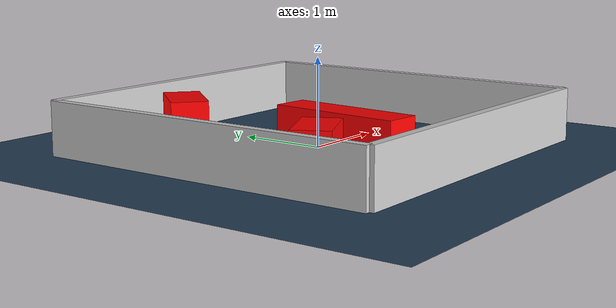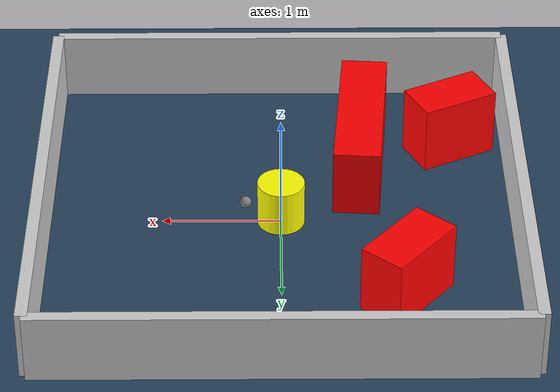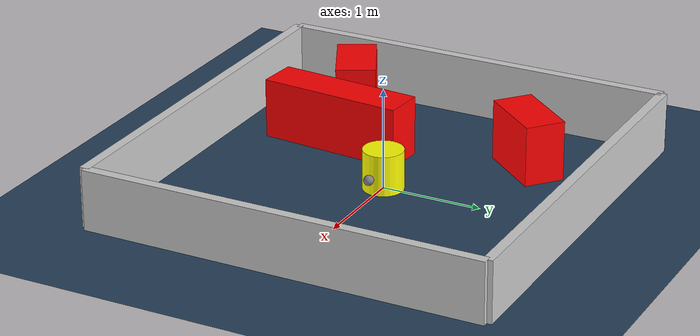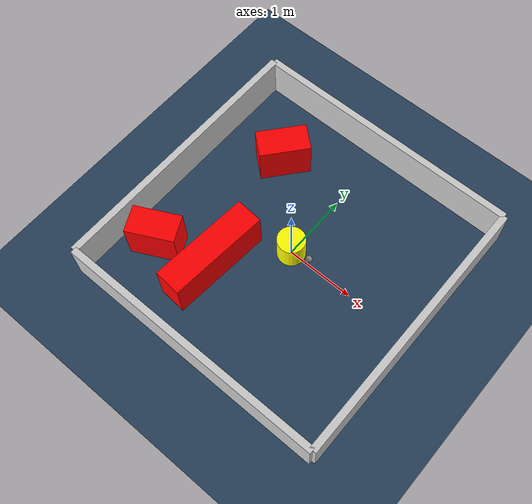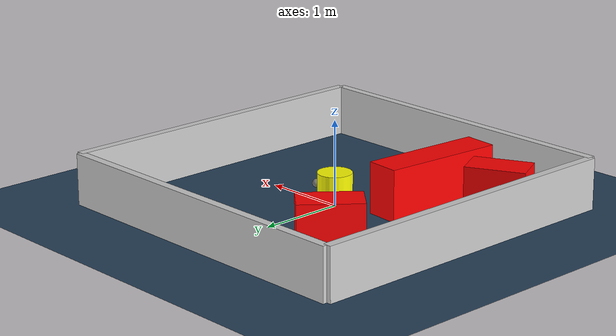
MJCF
<?xml version="1.0" ?>
<mujoco model="generated_environment">
  <option timestep="0.01" integrator="RK4" cone="elliptic"/>
  <default>
    <geom density="1"/>
  </default>
  <asset>
    <texture builtin="gradient" height="3072" rgb1="0.3 0.5 0.7" rgb2="0 0 0" type="skybox" width="512"/>
    <texture builtin="checker" height="300" mark="edge" markrgb="0.8 0.8 0.8" name="groundplane" rgb1="0.2 0.3 0.4" rgb2="0.1 0.2 0.3" type="2d" width="300"/>
    <material name="groundplane" reflectance="0.2" texrepeat="5 5" texture="groundplane" texuniform="true"/>
    <material name="robot" rgba="0.0 1.0 0.0 1"/>
  </asset>
  <worldbody>
    <light dir="0 0 -1" directional="true" pos="0 0 1.5"/>
    <geom condim="4" friction="1.0 0.005 0.001" material="groundplane" name="floor" size="0 0 0.05" type="plane"/>
    <body name="walls">
      <geom name="wall_1" condim="4" pos="-2.0 0.0 0.3" rgba="0.800000011920929 0.800000011920929 0.800000011920929 1.0" size="0.05 2.0 0.3" type="box"/>
      <geom name="wall_2" condim="4" pos="2.0 0.0 0.3" rgba="0.800000011920929 0.800000011920929 0.800000011920929 1.0" size="0.05 2.0 0.3" type="box"/>
      <geom name="wall_3" condim="4" pos="0.0 -2.0 0.3" rgba="0.800000011920929 0.800000011920929 0.800000011920929 1.0" size="2.0 0.05 0.3" type="box"/>
      <geom name="wall_4" condim="4" pos="0.0 2.0 0.3" rgba="0.800000011920929 0.800000011920929 0.800000011920929 1.0" size="2.0 0.05 0.3" type="box"/>
    </body>
    <body name="robot">
      <joint name="joint_x" type="slide" pos="0 0 0" axis="1 0 0"/>
      <joint name="joint_y" type="slide" pos="0 0 0" axis="0 1 0"/>
      <geom name="robot" type="sphere" pos="0.3 0.0 0.2" size="0.05" mass="5." friction="1.0 0.005 0.0001" condim="4" rgba="0.5 0.5 0.5 1.0"/>
      <site name="sensor_ball"/>
    </body>
    <body name="obstacle_movable_1">
      <geom name="obstacle_movable_1" condim="4" pos="0.0 0.0 0.2" euler="0 0 0.0" friction="1.0 0.005 0.001" rgba="1.0 1.0 0.0 1.0" size="0.2 0.2 0.0" type="cylinder" mass="0.1"/>
      <joint type="free"/>
    </body>
    <body name="obstacle_2_static">
      <geom name="obstacle_2_static" condim="4" pos="-1.4820228754337361 -1.0638148943761012 0.3" euler="0 0 206.46778476323144" friction="1.0 0.005 0.001" rgba="1 0 0 1" size="0.34478213489568155 0.2 0.3" type="box"/>
    </body>
    <body name="obstacle_3_static">
      <geom name="obstacle_3_static" condim="4" pos="-0.694455067902368 -0.8331273524733416 0.3" euler="0 0 265.500531978315" friction="1.0 0.005 0.001" rgba="1 0 0 1" size="0.7327432434224115 0.2 0.3" type="box"/>
    </body>
    <body name="obstacle_4_static">
      <geom name="obstacle_4_static" condim="4" pos="-1.0166422127955292 1.0297521337326965 0.3" euler="0 0 229.94375692944416" friction="1.0 0.005 0.001" rgba="1 0 0 1" size="0.36253640556807615 0.2 0.3" type="box"/>
    </body>
  </worldbody>
  <actuator>
    <motor name="actuator_x" joint="joint_x" gear="1" ctrlrange="-1 1"/>
    <motor name="actuator_y" joint="joint_y" gear="1" ctrlrange="-1 1"/>
  </actuator>
</mujoco>
